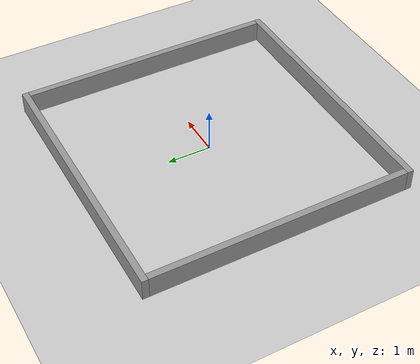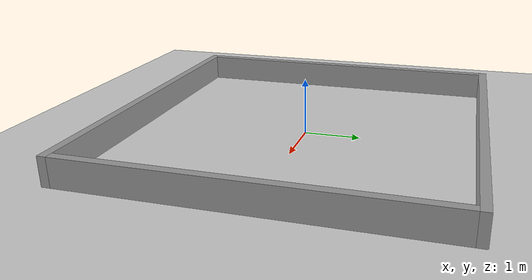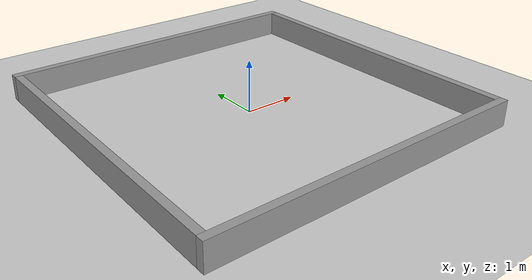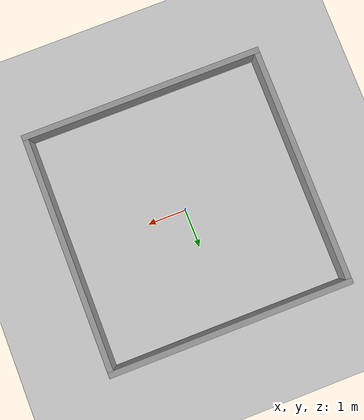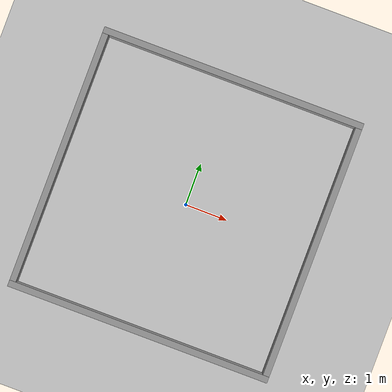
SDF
<?xml version="1.0"?>
<sdf version="1.6">
  <world name="go2_arena">

    <include>
      <uri>model://ground_plane</uri>
    </include>

    <include>
      <uri>model://sun</uri>
    </include>

    <scene>
      <shadows>false</shadows>
    </scene>

    <gui fullscreen='0'>
      <camera name='user_camera'>
        <pose>0 0 12 0 1.5707 0</pose>
        <view_controller>orbit</view_controller>
        <projection_type>perspective</projection_type>
      </camera>
    </gui>

    <physics type="ode">
      <real_time_update_rate>1000.0</real_time_update_rate>
      <max_step_size>0.001</max_step_size>
      <real_time_factor>1</real_time_factor>
      <ode>
        <solver>
          <type>quick</type>
          <iters>150</iters>
          <sor>1.4</sor>
          <use_dynamic_moi_rescaling>1</use_dynamic_moi_rescaling>
        </solver>
      </ode>
    </physics>

    <!-- 6 m × 6 m flat arena  (x: -3..+3,  y: -3..+3) -->
    <!-- Walls are 0.5 m tall so the LiDAR sees them regardless of robot pose -->

    <model name="wall_north">
      <static>true</static>
      <pose>0 3.075 0.25 0 0 0</pose>
      <link name="link">
        <collision name="col"><geometry><box><size>6.3 0.15 0.5</size></box></geometry></collision>
        <visual name="vis">
          <geometry><box><size>6.3 0.15 0.5</size></box></geometry>
          <material><ambient>0.6 0.6 0.6 1</ambient><diffuse>0.6 0.6 0.6 1</diffuse></material>
        </visual>
      </link>
    </model>

    <model name="wall_south">
      <static>true</static>
      <pose>0 -3.075 0.25 0 0 0</pose>
      <link name="link">
        <collision name="col"><geometry><box><size>6.3 0.15 0.5</size></box></geometry></collision>
        <visual name="vis">
          <geometry><box><size>6.3 0.15 0.5</size></box></geometry>
          <material><ambient>0.6 0.6 0.6 1</ambient><diffuse>0.6 0.6 0.6 1</diffuse></material>
        </visual>
      </link>
    </model>

    <model name="wall_east">
      <static>true</static>
      <pose>3.075 0 0.25 0 0 0</pose>
      <link name="link">
        <collision name="col"><geometry><box><size>0.15 6.0 0.5</size></box></geometry></collision>
        <visual name="vis">
          <geometry><box><size>0.15 6.0 0.5</size></box></geometry>
          <material><ambient>0.6 0.6 0.6 1</ambient><diffuse>0.6 0.6 0.6 1</diffuse></material>
        </visual>
      </link>
    </model>

    <model name="wall_west">
      <static>true</static>
      <pose>-3.075 0 0.25 0 0 0</pose>
      <link name="link">
        <collision name="col"><geometry><box><size>0.15 6.0 0.5</size></box></geometry></collision>
        <visual name="vis">
          <geometry><box><size>0.15 6.0 0.5</size></box></geometry>
          <material><ambient>0.6 0.6 0.6 1</ambient><diffuse>0.6 0.6 0.6 1</diffuse></material>
        </visual>
      </link>
    </model>

  </world>
</sdf>
